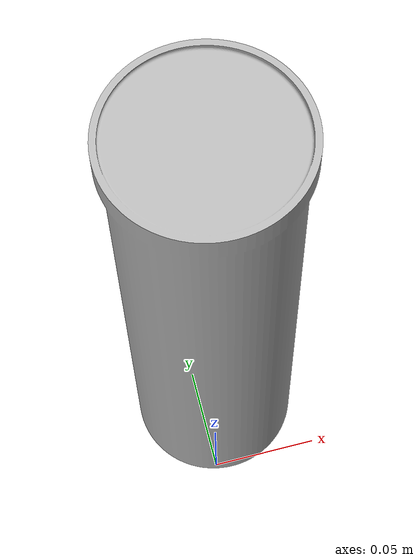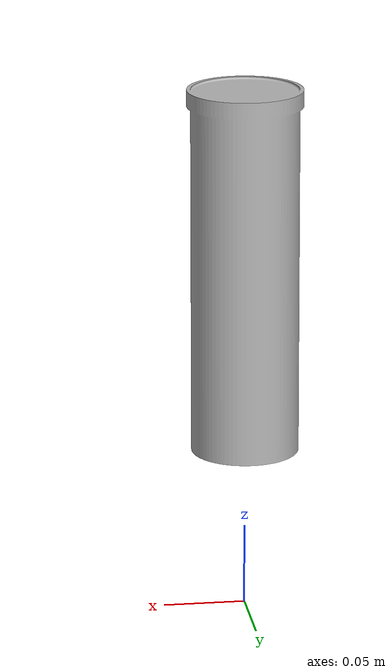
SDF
<?xml version='1.0'?>
<sdf version='1.4'>
  <model name="chipster">
  <static>true</static>
    <link name='base_body'>
      <pose>0 0 .1 0 0 0</pose>
       <collision name='collision'>
        <geometry>
          <mesh>
            <uri>model://chipster/meshes/chipster.stl</uri>
            <scale>0.001 0.001 0.001</scale>
          </mesh>
        </geometry>
      </collision>
      <visual name='visual'>
        <geometry>
          <mesh>
            <uri>model://chipster/meshes/chipster.stl</uri>
            <scale>0.001 0.001 0.001</scale>
          </mesh>
        </geometry>
	<material>
          <script>
            <uri>model://chipster/mat/mat.material</uri>
            <name>chipster_mat</name>
          </script>
        </material>
      </visual>
    </link>
  </model>
</sdf>
